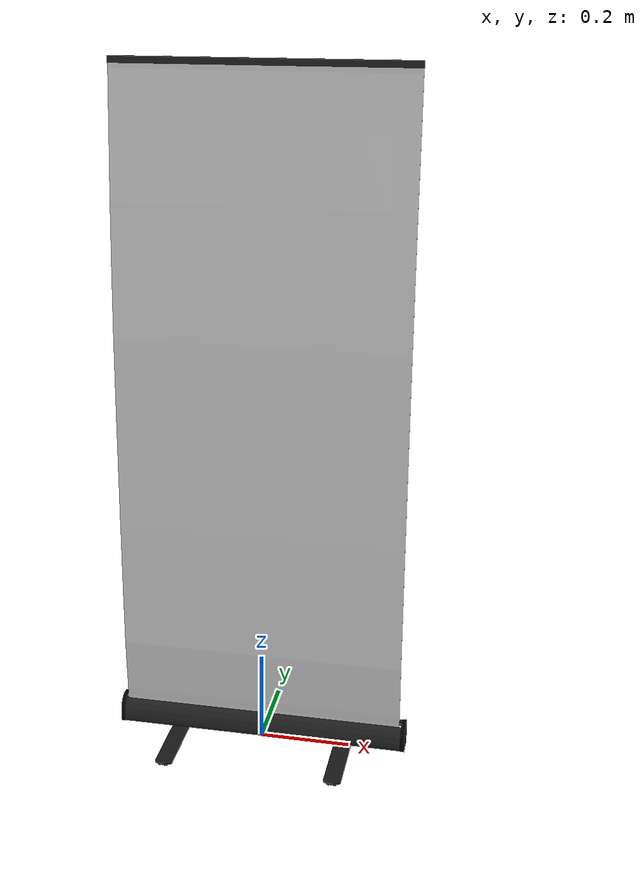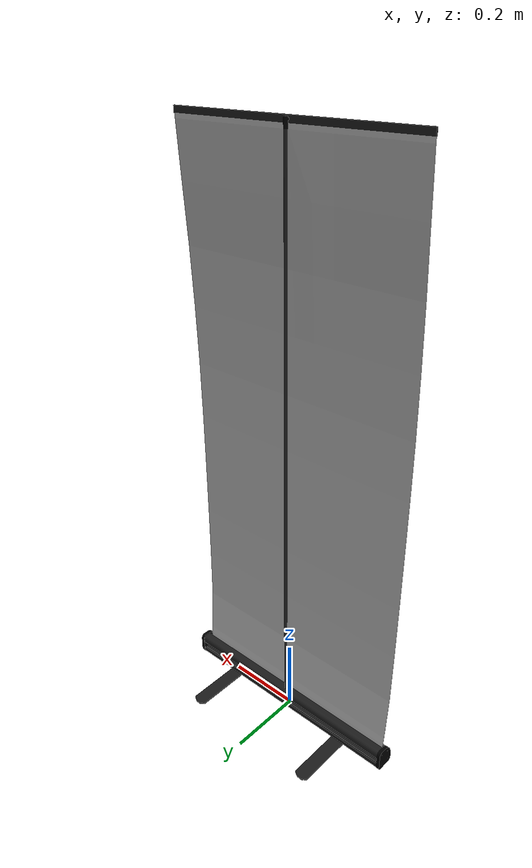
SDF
<?xml version="1.0" ?>
<sdf version="1.6">
  <model name="DigilabRollup">
    <static>true</static>
    <link name="cell_link">
      <visual name="visual">
        <geometry>
          <mesh>
            <uri>model://DigilabRollup/meshes/DigilabRollup.dae</uri>
          </mesh>
        </geometry>
      </visual>
      <collision name="collision">
        <geometry>
          <mesh>
            <uri>model://DigilabRollup/meshes/DigilabRollup.stl</uri>
          </mesh>
        </geometry>
      </collision>
    </link>
  </model>
</sdf>
